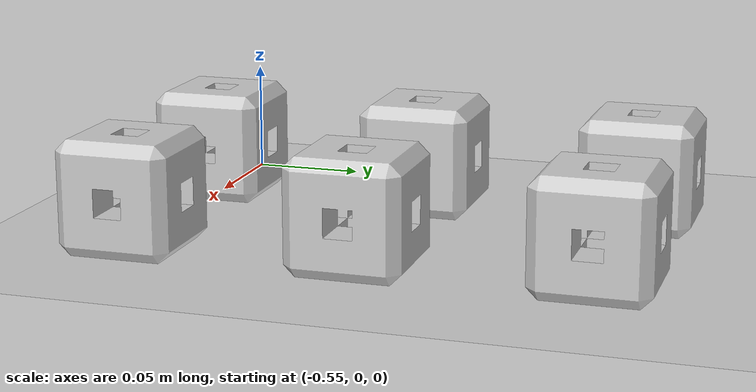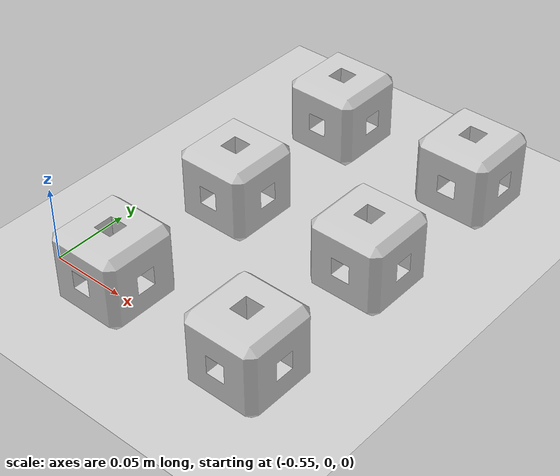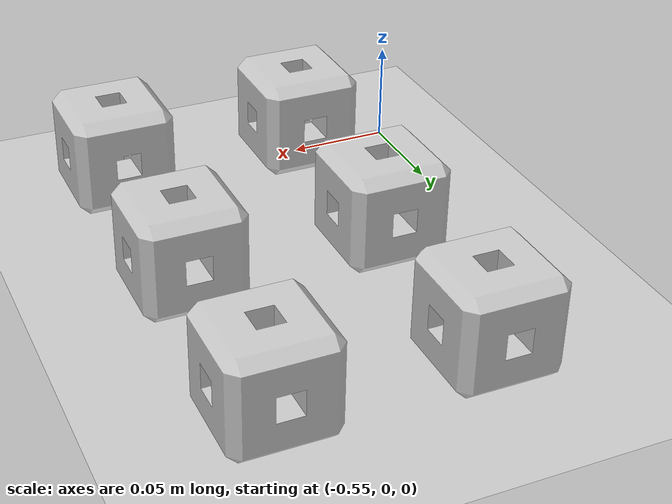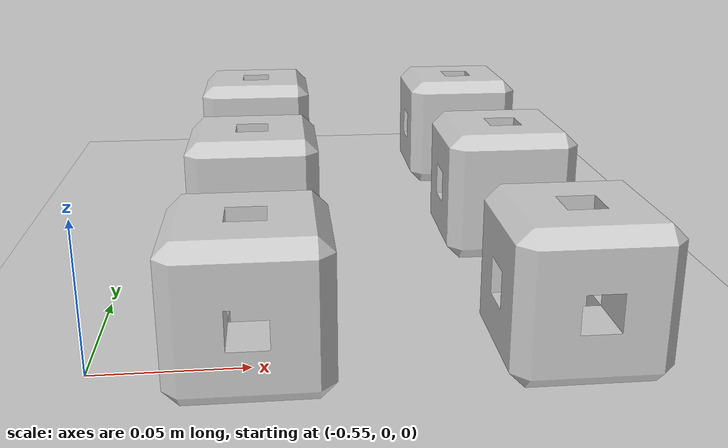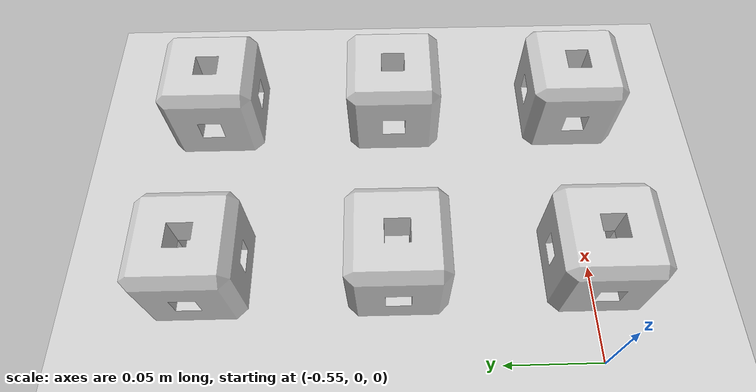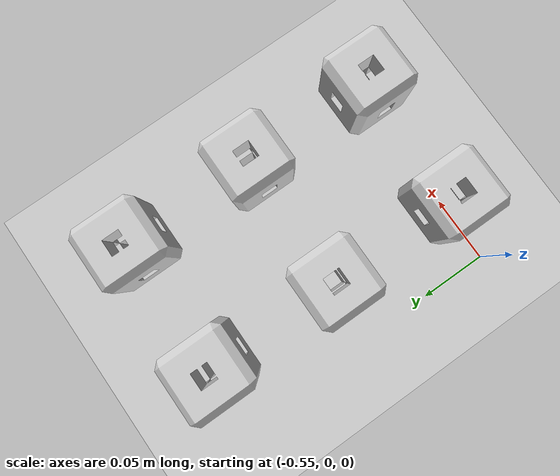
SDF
<sdf version="1.6">
 <world name="default">
  <plugin name="ros_link_attacher_plugin" filename="libgazebo_ros_link_attacher.so"/>
  <light name="sun" type="directional">
   <pose>0 0 10 0 -0 0</pose>
   <diffuse>0.8 0.8 0.8 1</diffuse>
   <specular>0.2 0.2 0.2 1</specular>
   <attenuation>
    <range>1000</range>
    <constant>0.9</constant>
    <linear>0.01</linear>
    <quadratic>0.001</quadratic>
   </attenuation>
   <direction>-0.5 0.1 -0.9</direction>
  </light>
  <model name="ground_plane">
   <static>1</static>
   <link name="link">
    <collision name="collision">
     <geometry><plane><normal>0 0 1</normal><size>100 100</size></plane></geometry>
     <surface>
      <contact><collide_bitmask>65535</collide_bitmask></contact>
      <friction><ode><mu>100</mu><mu2>50</mu2></ode></friction>
     </surface>
    </collision>
    <visual name="visual">
     <cast_shadows>0</cast_shadows>
     <geometry><plane><normal>0 0 1</normal><size>100 100</size></plane></geometry>
     <material>
      <script><uri>file://media/materials/scripts/gazebo.material</uri><name>Gazebo/Grey</name></script>
     </material>
    </visual>
   </link>
  </model>
  <gravity>0 0 -9.8</gravity>
  <magnetic_field>6e-06 2.3e-05 -4.2e-05</magnetic_field>
  <atmosphere type="adiabatic"/>
  <physics name="default_physics" default="0" type="ode">
   <max_step_size>0.001</max_step_size>
   <real_time_factor>1</real_time_factor>
   <real_time_update_rate>1000</real_time_update_rate>
  </physics>
  <scene><ambient>0.4 0.4 0.4 1</ambient><background>0.7 0.7 0.7 1</background><shadows>1</shadows></scene>
  <audio><device>default</device></audio>
  <spherical_coordinates>
   <surface_model>EARTH_WGS84</surface_model>
   <latitude_deg>0</latitude_deg>
   <longitude_deg>0</longitude_deg>
   <elevation>0</elevation>
   <heading_deg>0</heading_deg>
  </spherical_coordinates>
  <model name="cube0">
   <static>0</static>
   <link name="link">
    <collision name="collision">
     <geometry><mesh><uri>model://cube.dae</uri><scale>1 1 1</scale></mesh></geometry>
    </collision>
    <visual name="visual">
     <geometry><mesh><uri>model://cube.dae</uri><scale>1 1 1</scale></mesh></geometry>
    </visual>
    <inertial>
     <inertia><ixx>1</ixx><ixy>0</ixy><ixz>0</ixz><iyy>1</iyy><iyz>0</iyz><izz>1</izz></inertia>
     <mass>1</mass>
    </inertial>
   </link>
   <pose>-0.5 0 0.024991 2e-06 -5e-06 -3e-06</pose>
  </model>
  <model name="cube1">
   <static>0</static>
   <link name="link">
    <collision name="collision">
     <geometry><mesh><uri>model://cube.dae</uri><scale>1 1 1</scale></mesh></geometry>
    </collision>
    <visual name="visual">
     <geometry><mesh><uri>model://cube.dae</uri><scale>1 1 1</scale></mesh></geometry>
    </visual>
    <inertial>
     <inertia><ixx>1</ixx><ixy>0</ixy><ixz>0</ixz><iyy>1</iyy><iyz>0</iyz><izz>1</izz></inertia>
     <mass>1</mass>
    </inertial>
   </link>
   <pose>-0.5 0.1 0.024991 2e-06 -5e-06 -3e-06</pose>
  </model>
  <model name="cube2">
   <static>0</static>
   <link name="link">
    <collision name="collision">
     <geometry><mesh><uri>model://cube.dae</uri><scale>1 1 1</scale></mesh></geometry>
    </collision>
    <visual name="visual">
     <geometry><mesh><uri>model://cube.dae</uri><scale>1 1 1</scale></mesh></geometry>
    </visual>
    <inertial>
     <inertia><ixx>1</ixx><ixy>0</ixy><ixz>0</ixz><iyy>1</iyy><iyz>0</iyz><izz>1</izz></inertia>
     <mass>1</mass>
    </inertial>
   </link>
   <pose>-0.5 0.2 0.024991 2e-06 -5e-06 -3e-06</pose>
  </model>
  <model name="cube3">
   <static>0</static>
   <link name="link">
    <collision name="collision">
     <geometry><mesh><uri>model://cube.dae</uri><scale>1 1 1</scale></mesh></geometry>
    </collision>
    <visual name="visual">
     <geometry><mesh><uri>model://cube.dae</uri><scale>1 1 1</scale></mesh></geometry>
    </visual>
    <inertial>
     <inertia><ixx>1</ixx><ixy>0</ixy><ixz>0</ixz><iyy>1</iyy><iyz>0</iyz><izz>1</izz></inertia>
     <mass>1</mass>
    </inertial>
   </link>
   <pose>-0.4 0 0.024991 2e-06 -5e-06 -3e-06</pose>
  </model>
  <model name="cube4">
   <static>0</static>
   <link name="link">
    <collision name="collision">
     <geometry><mesh><uri>model://cube.dae</uri><scale>1 1 1</scale></mesh></geometry>
    </collision>
    <visual name="visual">
     <geometry><mesh><uri>model://cube.dae</uri><scale>1 1 1</scale></mesh></geometry>
    </visual>
    <inertial>
     <inertia><ixx>1</ixx><ixy>0</ixy><ixz>0</ixz><iyy>1</iyy><iyz>0</iyz><izz>1</izz></inertia>
     <mass>1</mass>
    </inertial>
   </link>
   <pose>-0.4 0.1 0.024991 2e-06 -5e-06 -3e-06</pose>
  </model>
  <model name="cube5">
   <static>0</static>
   <link name="link">
    <collision name="collision">
     <geometry><mesh><uri>model://cube.dae</uri><scale>1 1 1</scale></mesh></geometry>
    </collision>
    <visual name="visual">
     <geometry><mesh><uri>model://cube.dae</uri><scale>1 1 1</scale></mesh></geometry>
    </visual>
    <inertial>
     <inertia><ixx>1</ixx><ixy>0</ixy><ixz>0</ixz><iyy>1</iyy><iyz>0</iyz><izz>1</izz></inertia>
     <mass>1</mass>
    </inertial>
   </link>
   <pose>-0.4 0.2 0.024991 2e-06 -5e-06 -3e-06</pose>
  </model>
 </world>
</sdf>
